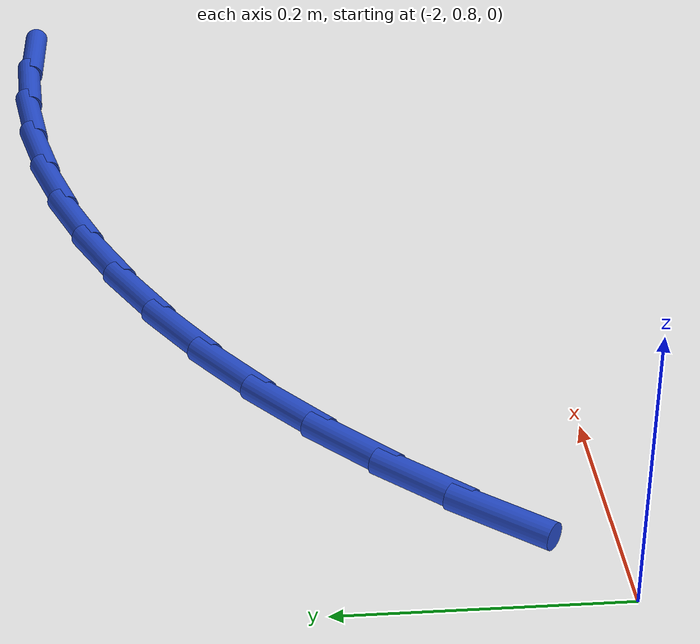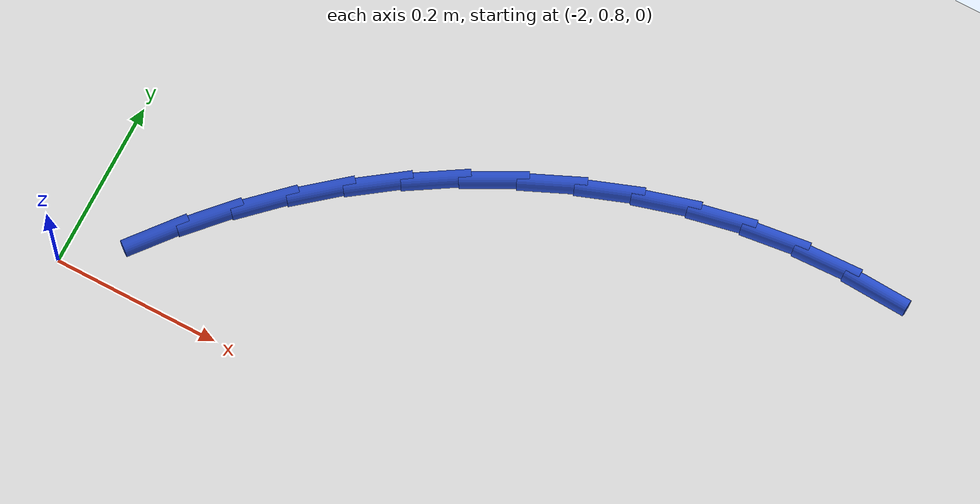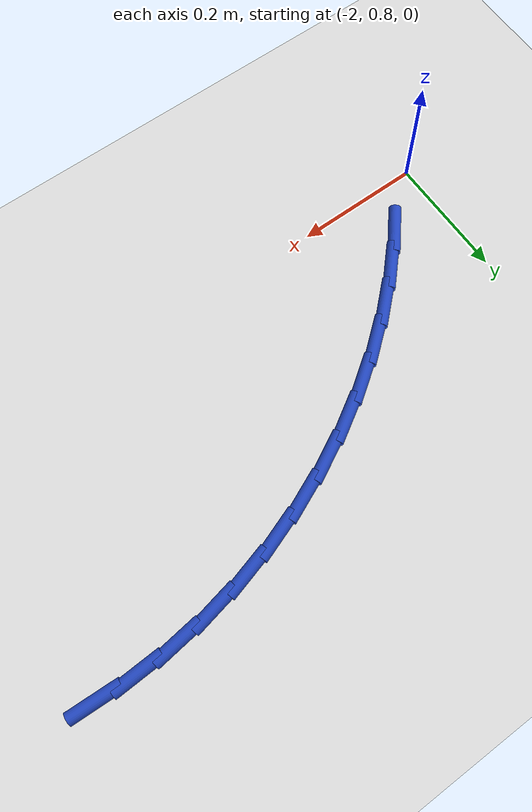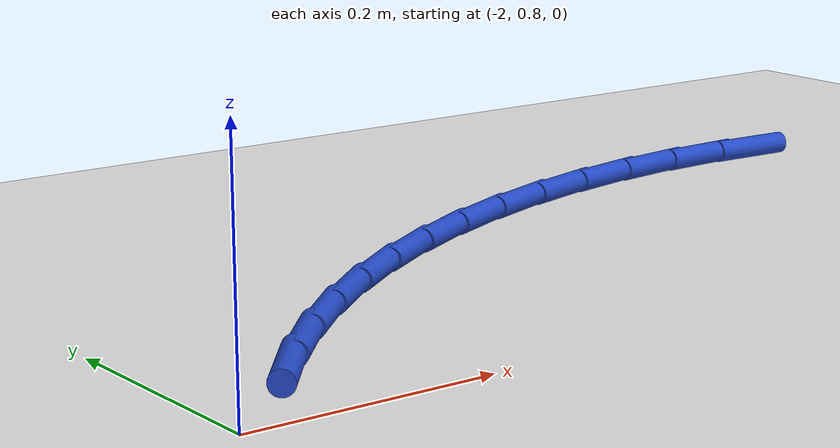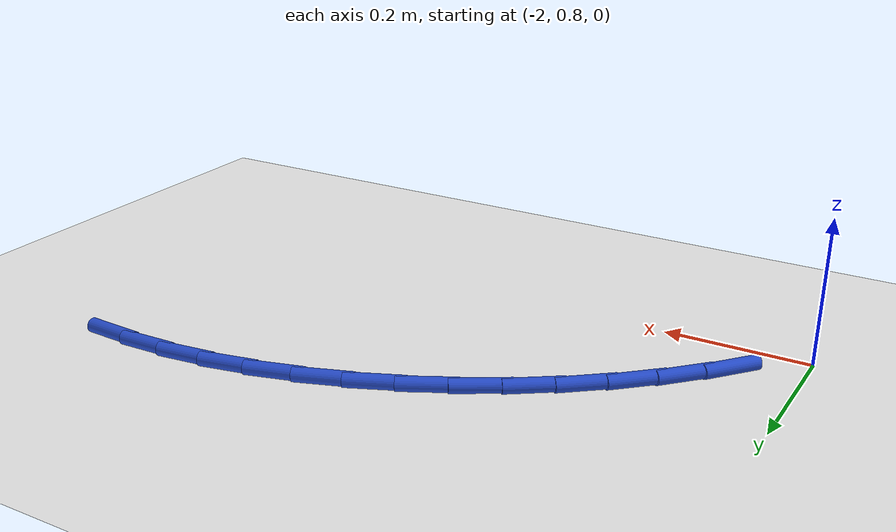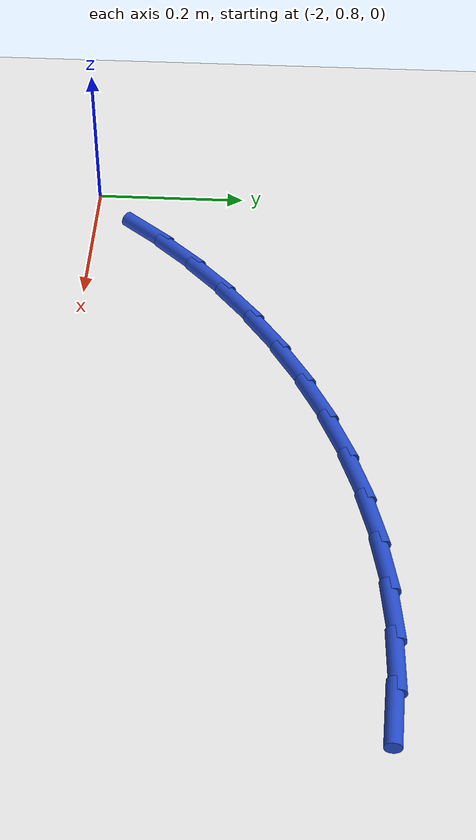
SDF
<sdf version="1.6">
 <world name="default">
  <model name="ground_plane">
   <static>1</static>
   <link name="link">
    <collision name="collision">
     <geometry><plane><normal>0 0 1</normal><size>100 100</size></plane></geometry>
     <surface><friction><ode><mu>100</mu><mu2>50</mu2></ode></friction></surface>
    </collision>
    <visual name="visual">
     <cast_shadows>0</cast_shadows>
     <geometry><plane><normal>0 0 1</normal><size>100 100</size></plane></geometry>
     <material>
      <script><uri>file://media/materials/scripts/gazebo.material</uri><name>Gazebo/WhiteGlow</name></script>
     </material>
    </visual>
   </link>
  </model>
  <model name="line">
   <link name="link_28">
    <pose>-1.1719449449021753 1.195069541736441 0.01 0 1.57 -0.04954291505463412</pose>
    <collision name="collision">
     <geometry><cylinder><radius>0.01</radius><length>0.08</length></cylinder></geometry>
    </collision>
    <visual name="visual">
     <material>
      <script><name>Gazebo/Blue</name><uri>file://media/materials/scripts/gazebo.material</uri></script>
     </material>
     <geometry><cylinder><radius>0.01</radius><length>0.08</length></cylinder></geometry>
    </visual>
   </link>
   <link name="link_29">
    <pose>-1.2353624394959621 1.1982140023985068 0.01 0 1.57 0.035512731837509484</pose>
    <collision name="collision">
     <geometry><cylinder><radius>0.01</radius><length>0.08</length></cylinder></geometry>
    </collision>
    <visual name="visual">
     <material>
      <script><name>Gazebo/Blue</name><uri>file://media/materials/scripts/gazebo.material</uri></script>
     </material>
     <geometry><cylinder><radius>0.01</radius><length>0.08</length></cylinder></geometry>
    </visual>
   </link>
   <link name="link_30">
    <pose>-1.2990877327830248 1.1959499913110676 0.01 0 1.57 0.11964626593516557</pose>
    <collision name="collision">
     <geometry><cylinder><radius>0.01</radius><length>0.08</length></cylinder></geometry>
    </collision>
    <visual name="visual">
     <material>
      <script><name>Gazebo/Blue</name><uri>file://media/materials/scripts/gazebo.material</uri></script>
     </material>
     <geometry><cylinder><radius>0.01</radius><length>0.08</length></cylinder></geometry>
    </visual>
   </link>
   <link name="link_31">
    <pose>-1.3628413333176035 1.1882855031485529 0.01 0 1.57 0.19914681533290343</pose>
    <collision name="collision">
     <geometry><cylinder><radius>0.01</radius><length>0.08</length></cylinder></geometry>
    </collision>
    <visual name="visual">
     <material>
      <script><name>Gazebo/Blue</name><uri>file://media/materials/scripts/gazebo.material</uri></script>
     </material>
     <geometry><cylinder><radius>0.01</radius><length>0.08</length></cylinder></geometry>
    </visual>
   </link>
   <link name="link_32">
    <pose>-1.4262205152735192 1.1754941933291203 0.01 0 1.57 0.27465420512675476</pose>
    <collision name="collision">
     <geometry><cylinder><radius>0.01</radius><length>0.08</length></cylinder></geometry>
    </collision>
    <visual name="visual">
     <material>
      <script><name>Gazebo/Blue</name><uri>file://media/materials/scripts/gazebo.material</uri></script>
     </material>
     <geometry><cylinder><radius>0.01</radius><length>0.08</length></cylinder></geometry>
    </visual>
   </link>
   <link name="link_33">
    <pose>-1.4888200093698767 1.1578552002868634 0.01 0 1.57 0.34697188259212486</pose>
    <collision name="collision">
     <geometry><cylinder><radius>0.01</radius><length>0.08</length></cylinder></geometry>
    </collision>
    <visual name="visual">
     <material>
      <script><name>Gazebo/Blue</name><uri>file://media/materials/scripts/gazebo.material</uri></script>
     </material>
     <geometry><cylinder><radius>0.01</radius><length>0.08</length></cylinder></geometry>
    </visual>
   </link>
   <link name="link_34">
    <pose>-1.5502345463257803 1.1356476624558773 0.01 0 1.57 0.41694447916535304</pose>
    <collision name="collision">
     <geometry><cylinder><radius>0.01</radius><length>0.08</length></cylinder></geometry>
    </collision>
    <visual name="visual">
     <material>
      <script><name>Gazebo/Blue</name><uri>file://media/materials/scripts/gazebo.material</uri></script>
     </material>
     <geometry><cylinder><radius>0.01</radius><length>0.08</length></cylinder></geometry>
    </visual>
   </link>
   <link name="link_35">
    <pose>-1.6100588568603333 1.1091507182702562 0.01 0 1.57 0.4854387941482577</pose>
    <collision name="collision">
     <geometry><cylinder><radius>0.01</radius><length>0.08</length></cylinder></geometry>
    </collision>
    <visual name="visual">
     <material>
      <script><name>Gazebo/Blue</name><uri>file://media/materials/scripts/gazebo.material</uri></script>
     </material>
     <geometry><cylinder><radius>0.01</radius><length>0.08</length></cylinder></geometry>
    </visual>
   </link>
   <link name="link_36">
    <pose>-1.6678876716926414 1.0786435061640944 0.01 0 1.57 0.553338329441995</pose>
    <collision name="collision">
     <geometry><cylinder><radius>0.01</radius><length>0.08</length></cylinder></geometry>
    </collision>
    <visual name="visual">
     <material>
      <script><name>Gazebo/Blue</name><uri>file://media/materials/scripts/gazebo.material</uri></script>
     </material>
     <geometry><cylinder><radius>0.01</radius><length>0.08</length></cylinder></geometry>
    </visual>
   </link>
   <link name="link_37">
    <pose>-1.7233157215418082 1.0444051645714865 0.01 0 1.57 0.6215465994237415</pose>
    <collision name="collision">
     <geometry><cylinder><radius>0.01</radius><length>0.08</length></cylinder></geometry>
    </collision>
    <visual name="visual">
     <material>
      <script><name>Gazebo/Blue</name><uri>file://media/materials/scripts/gazebo.material</uri></script>
     </material>
     <geometry><cylinder><radius>0.01</radius><length>0.08</length></cylinder></geometry>
    </visual>
   </link>
   <link name="link_38">
    <pose>-1.7759377399523575 1.0067148313231107 0.01 0 1.57 0.6903400480918651</pose>
    <collision name="collision">
     <geometry><cylinder><radius>0.01</radius><length>0.08</length></cylinder></geometry>
    </collision>
    <visual name="visual">
     <material>
      <script><name>Gazebo/Blue</name><uri>file://media/materials/scripts/gazebo.material</uri></script>
     </material>
     <geometry><cylinder><radius>0.01</radius><length>0.08</length></cylinder></geometry>
    </visual>
   </link>
   <link name="link_39">
    <pose>-1.8254374309709924 0.9658326431008659 0.01 0 1.57 0.7576993596853672</pose>
    <collision name="collision">
     <geometry><cylinder><radius>0.01</radius><length>0.08</length></cylinder></geometry>
    </collision>
    <visual name="visual">
     <material>
      <script><name>Gazebo/Blue</name><uri>file://media/materials/scripts/gazebo.material</uri></script>
     </material>
     <geometry><cylinder><radius>0.01</radius><length>0.08</length></cylinder></geometry>
    </visual>
   </link>
   <link name="link_40">
    <pose>-1.871821162909867 0.9219498261999077 0.01 0 1.57 0.8226976896578325</pose>
    <collision name="collision">
     <geometry><cylinder><radius>0.01</radius><length>0.08</length></cylinder></geometry>
    </collision>
    <visual name="visual">
     <material>
      <script><name>Gazebo/Blue</name><uri>file://media/materials/scripts/gazebo.material</uri></script>
     </material>
     <geometry><cylinder><radius>0.01</radius><length>0.08</length></cylinder></geometry>
    </visual>
   </link>
   <link name="link_41">
    <pose>-1.9151684277727525 0.8752419901198297 0.01 0 1.57 0.8849807918143959</pose>
    <collision name="collision">
     <geometry><cylinder><radius>0.01</radius><length>0.08</length></cylinder></geometry>
    </collision>
    <visual name="visual">
     <material>
      <script><name>Gazebo/Blue</name><uri>file://media/materials/scripts/gazebo.material</uri></script>
     </material>
     <geometry><cylinder><radius>0.01</radius><length>0.08</length></cylinder></geometry>
    </visual>
   </link>
  </model>
 </world>
</sdf>
